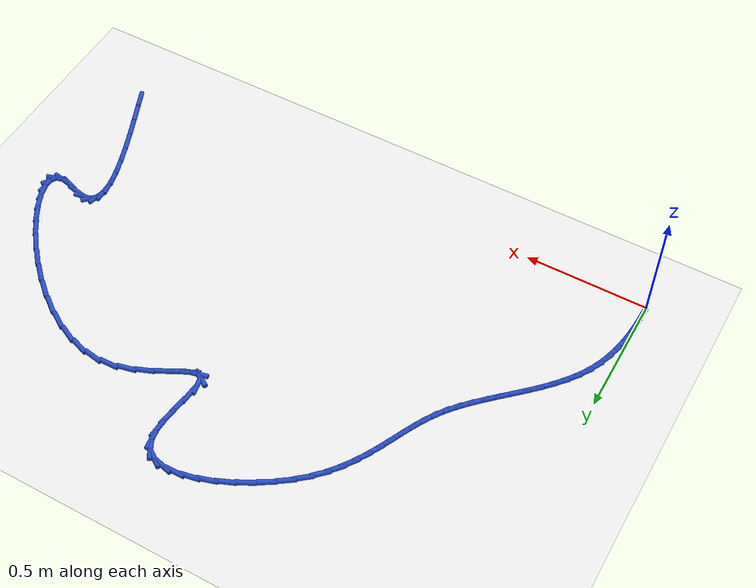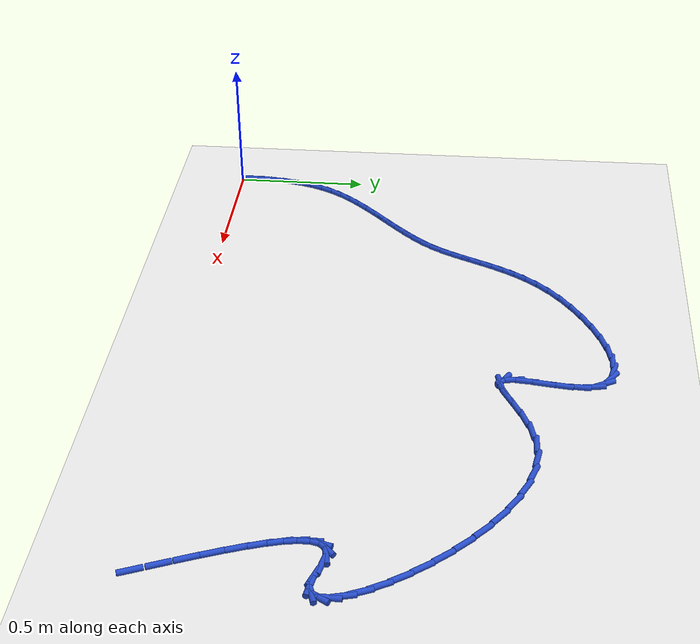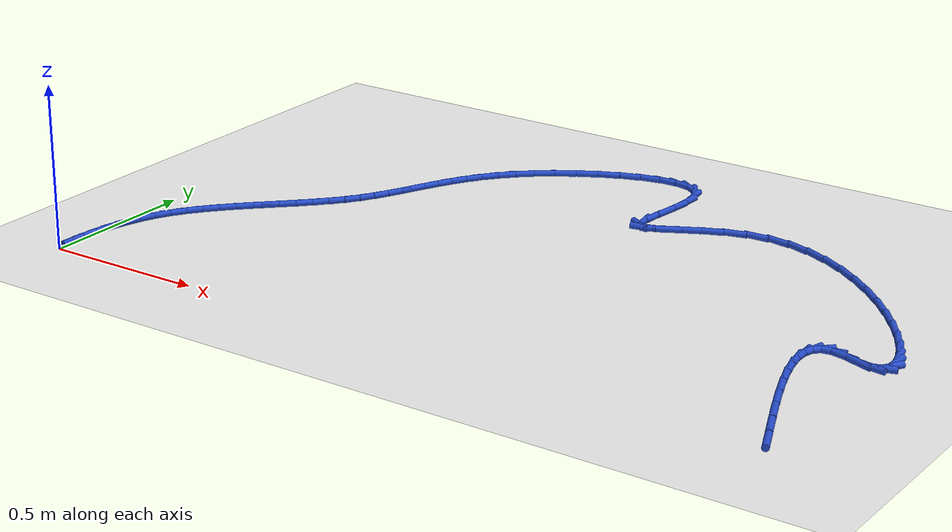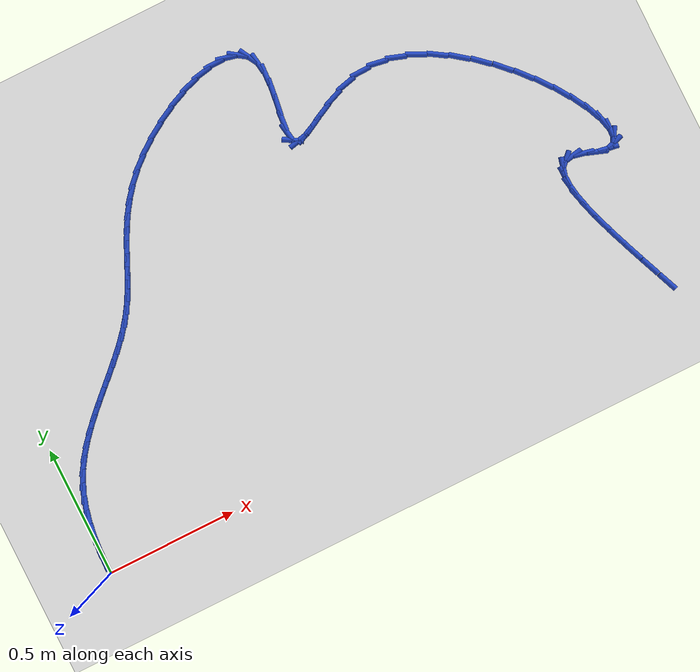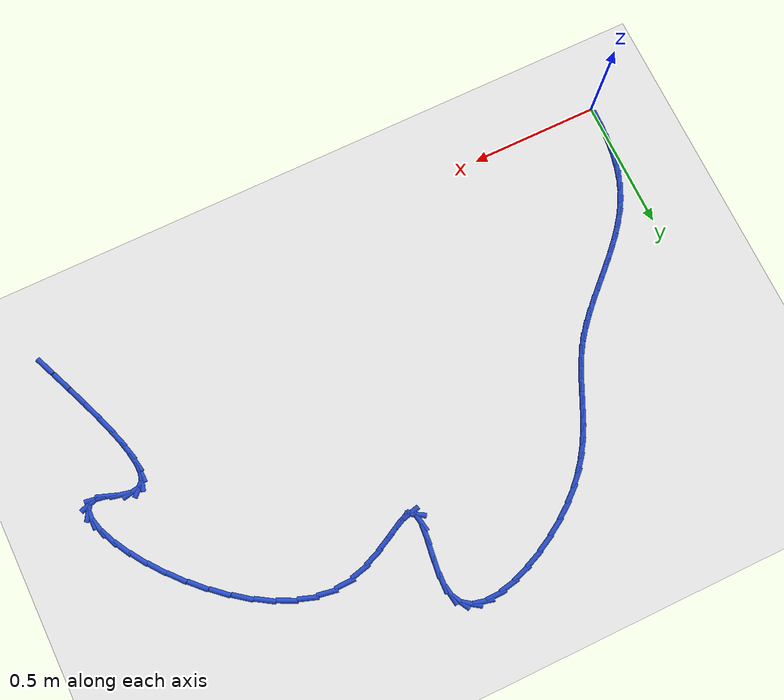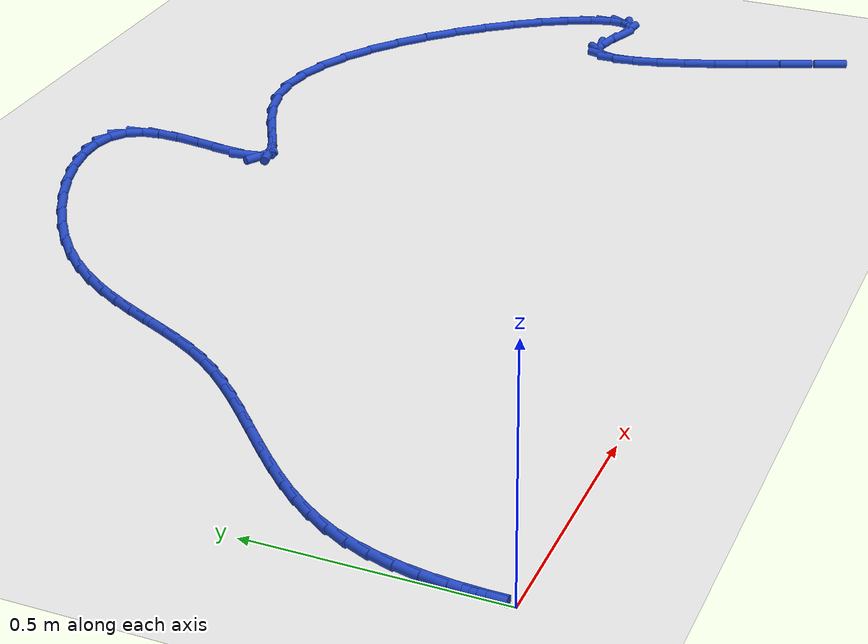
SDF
<sdf version="1.6">
 <world name="default">
  <model name="ground_plane">
   <static>1</static>
   <link name="link">
    <collision name="collision">
     <geometry><plane><normal>0 0 1</normal><size>100 100</size></plane></geometry>
     <surface><friction><ode><mu>100</mu><mu2>50</mu2></ode></friction></surface>
    </collision>
    <visual name="visual">
     <cast_shadows>0</cast_shadows>
     <geometry><plane><normal>0 0 1</normal><size>100 100</size></plane></geometry>
     <material>
      <script><uri>file://media/materials/scripts/gazebo.material</uri><name>Gazebo/WhiteGlow</name></script>
     </material>
    </visual>
   </link>
  </model>
  <model name="line">
   <link name="link_1">
    <pose>0.00043500452021122795 0.052981584294443676 0.01 0 1.57 1.5208898642054383</pose>
    <collision name="collision">
     <geometry><cylinder><radius>0.01</radius><length>0.08</length></cylinder></geometry>
    </collision>
    <visual name="visual">
     <material>
      <script><name>Gazebo/Blue</name><uri>file://media/materials/scripts/gazebo.material</uri></script>
     </material>
     <geometry><cylinder><radius>0.01</radius><length>0.08</length></cylinder></geometry>
    </visual>
   </link>
   <link name="link_2">
    <pose>0.0030667140822659717 0.10567063836101559 0.01 0 1.57 1.470550214013936</pose>
    <collision name="collision">
     <geometry><cylinder><radius>0.01</radius><length>0.08</length></cylinder></geometry>
    </collision>
    <visual name="visual">
     <material>
      <script><name>Gazebo/Blue</name><uri>file://media/materials/scripts/gazebo.material</uri></script>
     </material>
     <geometry><cylinder><radius>0.01</radius><length>0.08</length></cylinder></geometry>
    </visual>
   </link>
   <link name="link_3">
    <pose>0.008303527528725279 0.15773509716535003 0.01 0 1.57 1.410747370872445</pose>
    <collision name="collision">
     <geometry><cylinder><radius>0.01</radius><length>0.08</length></cylinder></geometry>
    </collision>
    <visual name="visual">
     <material>
      <script><name>Gazebo/Blue</name><uri>file://media/materials/scripts/gazebo.material</uri></script>
     </material>
     <geometry><cylinder><radius>0.01</radius><length>0.08</length></cylinder></geometry>
    </visual>
   </link>
   <link name="link_4">
    <pose>0.016553843702150194 0.2088428956730814 0.01 0 1.57 1.3406552772887717</pose>
    <collision name="collision">
     <geometry><cylinder><radius>0.01</radius><length>0.08</length></cylinder></geometry>
    </collision>
    <visual name="visual">
     <material>
      <script><name>Gazebo/Blue</name><uri>file://media/materials/scripts/gazebo.material</uri></script>
     </material>
     <geometry><cylinder><radius>0.01</radius><length>0.08</length></cylinder></geometry>
    </visual>
   </link>
   <link name="link_5">
    <pose>0.02822606144510177 0.25866196884984394 0.01 0 1.57 1.2596060054157323</pose>
    <collision name="collision">
     <geometry><cylinder><radius>0.01</radius><length>0.08</length></cylinder></geometry>
    </collision>
    <visual name="visual">
     <material>
      <script><name>Gazebo/Blue</name><uri>file://media/materials/scripts/gazebo.material</uri></script>
     </material>
     <geometry><cylinder><radius>0.01</radius><length>0.08</length></cylinder></geometry>
    </visual>
   </link>
   <link name="link_6">
    <pose>0.04372857960014104 0.3068602516612719 0.01 0 1.57 1.1673349412045655</pose>
    <collision name="collision">
     <geometry><cylinder><radius>0.01</radius><length>0.08</length></cylinder></geometry>
    </collision>
    <visual name="visual">
     <material>
      <script><name>Gazebo/Blue</name><uri>file://media/materials/scripts/gazebo.material</uri></script>
     </material>
     <geometry><cylinder><radius>0.01</radius><length>0.08</length></cylinder></geometry>
    </visual>
   </link>
   <link name="link_7">
    <pose>0.06346979700982908 0.3531056790729997 0.01 0 1.57 1.066675365331074</pose>
    <collision name="collision">
     <geometry><cylinder><radius>0.01</radius><length>0.08</length></cylinder></geometry>
    </collision>
    <visual name="visual">
     <material>
      <script><name>Gazebo/Blue</name><uri>file://media/materials/scripts/gazebo.material</uri></script>
     </material>
     <geometry><cylinder><radius>0.01</radius><length>0.08</length></cylinder></geometry>
    </visual>
   </link>
   <link name="link_8">
    <pose>0.08775436303835932 0.3971261382254803 0.01 0 1.57 0.9753920985315021</pose>
    <collision name="collision">
     <geometry><cylinder><radius>0.01</radius><length>0.08</length></cylinder></geometry>
    </collision>
    <visual name="visual">
     <material>
      <script><name>Gazebo/Blue</name><uri>file://media/materials/scripts/gazebo.material</uri></script>
     </material>
     <geometry><cylinder><radius>0.01</radius><length>0.08</length></cylinder></geometry>
    </visual>
   </link>
   <link name="link_9">
    <pose>0.11616525586093962 0.43906653770317067 0.01 0 1.57 0.9011191690737261</pose>
    <collision name="collision">
     <geometry><cylinder><radius>0.01</radius><length>0.08</length></cylinder></geometry>
    </collision>
    <visual name="visual">
     <material>
      <script><name>Gazebo/Blue</name><uri>file://media/materials/scripts/gazebo.material</uri></script>
     </material>
     <geometry><cylinder><radius>0.01</radius><length>0.08</length></cylinder></geometry>
    </visual>
   </link>
   <link name="link_10">
    <pose>0.14797884102928566 0.479248963787172 0.01 0 1.57 0.8434396431426506</pose>
    <collision name="collision">
     <geometry><cylinder><radius>0.01</radius><length>0.08</length></cylinder></geometry>
    </collision>
    <visual name="visual">
     <material>
      <script><name>Gazebo/Blue</name><uri>file://media/materials/scripts/gazebo.material</uri></script>
     </material>
     <geometry><cylinder><radius>0.01</radius><length>0.08</length></cylinder></geometry>
    </visual>
   </link>
   <link name="link_11">
    <pose>0.18247036417398113 0.5179961499108268 0.01 0 1.57 0.8014602633661414</pose>
    <collision name="collision">
     <geometry><cylinder><radius>0.01</radius><length>0.08</length></cylinder></geometry>
    </collision>
    <visual name="visual">
     <material>
      <script><name>Gazebo/Blue</name><uri>file://media/materials/scripts/gazebo.material</uri></script>
     </material>
     <geometry><cylinder><radius>0.01</radius><length>0.08</length></cylinder></geometry>
    </visual>
   </link>
   <link name="link_12">
    <pose>0.21891507092560988 0.5556308295074779 0.01 0 1.57 0.7742841384340893</pose>
    <collision name="collision">
     <geometry><cylinder><radius>0.01</radius><length>0.08</length></cylinder></geometry>
    </collision>
    <visual name="visual">
     <material>
      <script><name>Gazebo/Blue</name><uri>file://media/materials/scripts/gazebo.material</uri></script>
     </material>
     <geometry><cylinder><radius>0.01</radius><length>0.08</length></cylinder></geometry>
    </visual>
   </link>
   <link name="link_13">
    <pose>0.2565882069147555 0.5924757360104675 0.01 0 1.57 0.7612736541619016</pose>
    <collision name="collision">
     <geometry><cylinder><radius>0.01</radius><length>0.08</length></cylinder></geometry>
    </collision>
    <visual name="visual">
     <material>
      <script><name>Gazebo/Blue</name><uri>file://media/materials/scripts/gazebo.material</uri></script>
     </material>
     <geometry><cylinder><radius>0.01</radius><length>0.08</length></cylinder></geometry>
    </visual>
   </link>
   <link name="link_14">
    <pose>0.29476501777200187 0.6288536028531385 0.01 0 1.57 0.7621891333284874</pose>
    <collision name="collision">
     <geometry><cylinder><radius>0.01</radius><length>0.08</length></cylinder></geometry>
    </collision>
    <visual name="visual">
     <material>
      <script><name>Gazebo/Blue</name><uri>file://media/materials/scripts/gazebo.material</uri></script>
     </material>
     <geometry><cylinder><radius>0.01</radius><length>0.08</length></cylinder></geometry>
    </visual>
   </link>
   <link name="link_15">
    <pose>0.3327207491279326 0.665087163468833 0.01 0 1.57 0.7772548632885544</pose>
    <collision name="collision">
     <geometry><cylinder><radius>0.01</radius><length>0.08</length></cylinder></geometry>
    </collision>
    <visual name="visual">
     <material>
      <script><name>Gazebo/Blue</name><uri>file://media/materials/scripts/gazebo.material</uri></script>
     </material>
     <geometry><cylinder><radius>0.01</radius><length>0.08</length></cylinder></geometry>
    </visual>
   </link>
   <link name="link_16">
    <pose>0.36973064661313176 0.7014991512908944 0.01 0 1.57 0.8071772200619033</pose>
    <collision name="collision">
     <geometry><cylinder><radius>0.01</radius><length>0.08</length></cylinder></geometry>
    </collision>
    <visual name="visual">
     <material>
      <script><name>Gazebo/Blue</name><uri>file://media/materials/scripts/gazebo.material</uri></script>
     </material>
     <geometry><cylinder><radius>0.01</radius><length>0.08</length></cylinder></geometry>
    </visual>
   </link>
   <link name="link_17">
    <pose>0.40506995585818284 0.7384122997526644 0.01 0 1.57 0.8531072843763111</pose>
    <collision name="collision">
     <geometry><cylinder><radius>0.01</radius><length>0.08</length></cylinder></geometry>
    </collision>
    <visual name="visual">
     <material>
      <script><name>Gazebo/Blue</name><uri>file://media/materials/scripts/gazebo.material</uri></script>
     </material>
     <geometry><cylinder><radius>0.01</radius><length>0.08</length></cylinder></geometry>
    </visual>
   </link>
   <link name="link_18">
    <pose>0.43801392249366966 0.7761493422874861 0.01 0 1.57 0.9165021651937806</pose>
    <collision name="collision">
     <geometry><cylinder><radius>0.01</radius><length>0.08</length></cylinder></geometry>
    </collision>
    <visual name="visual">
     <material>
      <script><name>Gazebo/Blue</name><uri>file://media/materials/scripts/gazebo.material</uri></script>
     </material>
     <geometry><cylinder><radius>0.01</radius><length>0.08</length></cylinder></geometry>
    </visual>
   </link>
   <link name="link_19">
    <pose>0.4678377921501757 0.8150330123287015 0.01 0 1.57 0.9941278987002673</pose>
    <collision name="collision">
     <geometry><cylinder><radius>0.01</radius><length>0.08</length></cylinder></geometry>
    </collision>
    <visual name="visual">
     <material>
      <script><name>Gazebo/Blue</name><uri>file://media/materials/scripts/gazebo.material</uri></script>
     </material>
     <geometry><cylinder><radius>0.01</radius><length>0.08</length></cylinder></geometry>
    </visual>
   </link>
   <link name="link_20">
    <pose>0.4940388525267223 0.8553164822280097 0.01 0 1.57 1.0611538157828693</pose>
    <collision name="collision">
     <geometry><cylinder><radius>0.01</radius><length>0.08</length></cylinder></geometry>
    </collision>
    <visual name="visual">
     <material>
      <script><name>Gazebo/Blue</name><uri>file://media/materials/scripts/gazebo.material</uri></script>
     </material>
     <geometry><cylinder><radius>0.01</radius><length>0.08</length></cylinder></geometry>
    </visual>
   </link>
   <link name="link_21">
    <pose>0.5172737059981456 0.8968897355802032 0.01 0 1.57 1.107431508202331</pose>
    <collision name="collision">
     <geometry><cylinder><radius>0.01</radius><length>0.08</length></cylinder></geometry>
    </collision>
    <visual name="visual">
     <material>
      <script><name>Gazebo/Blue</name><uri>file://media/materials/scripts/gazebo.material</uri></script>
     </material>
     <geometry><cylinder><radius>0.01</radius><length>0.08</length></cylinder></geometry>
    </visual>
   </link>
   <link name="link_22">
    <pose>0.538576075469526 0.9395246120977981 0.01 0 1.57 1.1319307226415518</pose>
    <collision name="collision">
     <geometry><cylinder><radius>0.01</radius><length>0.08</length></cylinder></geometry>
    </collision>
    <visual name="visual">
     <material>
      <script><name>Gazebo/Blue</name><uri>file://media/materials/scripts/gazebo.material</uri></script>
     </material>
     <geometry><cylinder><radius>0.01</radius><length>0.08</length></cylinder></geometry>
    </visual>
   </link>
   <link name="link_23">
    <pose>0.5589798863942435 0.9829928880392141 0.01 0 1.57 1.134699054621189</pose>
    <collision name="collision">
     <geometry><cylinder><radius>0.01</radius><length>0.08</length></cylinder></geometry>
    </collision>
    <visual name="visual">
     <material>
      <script><name>Gazebo/Blue</name><uri>file://media/materials/scripts/gazebo.material</uri></script>
     </material>
     <geometry><cylinder><radius>0.01</radius><length>0.08</length></cylinder></geometry>
    </visual>
   </link>
   <link name="link_24">
    <pose>0.579519064225678 1.0270663396628705 0.01 0 1.57 1.116491813912213</pose>
    <collision name="collision">
     <geometry><cylinder><radius>0.01</radius><length>0.08</length></cylinder></geometry>
    </collision>
    <visual name="visual">
     <material>
      <script><name>Gazebo/Blue</name><uri>file://media/materials/scripts/gazebo.material</uri></script>
     </material>
     <geometry><cylinder><radius>0.01</radius><length>0.08</length></cylinder></geometry>
    </visual>
   </link>
   <link name="link_25">
    <pose>0.6012275344172092 1.0715167432271868 0.01 0 1.57 1.0786510362585258</pose>
    <collision name="collision">
     <geometry><cylinder><radius>0.01</radius><length>0.08</length></cylinder></geometry>
    </collision>
    <visual name="visual">
     <material>
      <script><name>Gazebo/Blue</name><uri>file://media/materials/scripts/gazebo.material</uri></script>
     </material>
     <geometry><cylinder><radius>0.01</radius><length>0.08</length></cylinder></geometry>
    </visual>
   </link>
   <link name="link_26">
    <pose>0.6251392224222173 1.1161158749905824 0.01 0 1.57 1.0231896917033152</pose>
    <collision name="collision">
     <geometry><cylinder><radius>0.01</radius><length>0.08</length></cylinder></geometry>
    </collision>
    <visual name="visual">
     <material>
      <script><name>Gazebo/Blue</name><uri>file://media/materials/scripts/gazebo.material</uri></script>
     </material>
     <geometry><cylinder><radius>0.01</radius><length>0.08</length></cylinder></geometry>
    </visual>
   </link>
   <link name="link_27">
    <pose>0.652288053694082 1.1606355112114763 0.01 0 1.57 0.952947877245439</pose>
    <collision name="collision">
     <geometry><cylinder><radius>0.01</radius><length>0.08</length></cylinder></geometry>
    </collision>
    <visual name="visual">
     <material>
      <script><name>Gazebo/Blue</name><uri>file://media/materials/scripts/gazebo.material</uri></script>
     </material>
     <geometry><cylinder><radius>0.01</radius><length>0.08</length></cylinder></geometry>
    </visual>
   </link>
   <link name="link_28">
    <pose>0.6837079536861835 1.204847428148289 0.01 0 1.57 0.8716390027845998</pose>
    <collision name="collision">
     <geometry><cylinder><radius>0.01</radius><length>0.08</length></cylinder></geometry>
    </collision>
    <visual name="visual">
     <material>
      <script><name>Gazebo/Blue</name><uri>file://media/materials/scripts/gazebo.material</uri></script>
     </material>
     <geometry><cylinder><radius>0.01</radius><length>0.08</length></cylinder></geometry>
    </visual>
   </link>
   <link name="link_29">
    <pose>0.7204328478519013 1.248523402059439 0.01 0 1.57 0.7836301448735291</pose>
    <collision name="collision">
     <geometry><cylinder><radius>0.01</radius><length>0.08</length></cylinder></geometry>
    </collision>
    <visual name="visual">
     <material>
      <script><name>Gazebo/Blue</name><uri>file://media/materials/scripts/gazebo.material</uri></script>
     </material>
     <geometry><cylinder><radius>0.01</radius><length>0.08</length></cylinder></geometry>
    </visual>
   </link>
   <link name="link_30">
    <pose>0.7634966616446157 1.2914352092033465 0.01 0 1.57 0.6948969449313782</pose>
    <collision name="collision">
     <geometry><cylinder><radius>0.01</radius><length>0.08</length></cylinder></geometry>
    </collision>
    <visual name="visual">
     <material>
      <script><name>Gazebo/Blue</name><uri>file://media/materials/scripts/gazebo.material</uri></script>
     </material>
     <geometry><cylinder><radius>0.01</radius><length>0.08</length></cylinder></geometry>
    </visual>
   </link>
   <link name="link_31">
    <pose>0.8136782272785172 1.3332666739318826 0.01 0 1.57 0.6161848446954908</pose>
    <collision name="collision">
     <geometry><cylinder><radius>0.01</radius><length>0.08</length></cylinder></geometry>
    </collision>
    <visual name="visual">
     <material>
      <script><name>Gazebo/Blue</name><uri>file://media/materials/scripts/gazebo.material</uri></script>
     </material>
     <geometry><cylinder><radius>0.01</radius><length>0.08</length></cylinder></geometry>
    </visual>
   </link>
   <link name="link_32">
    <pose>0.8698466300683007 1.3730431716259925 0.01 0 1.57 0.5447257016983517</pose>
    <collision name="collision">
     <geometry><cylinder><radius>0.01</radius><length>0.08</length></cylinder></geometry>
    </collision>
    <visual name="visual">
     <material>
      <script><name>Gazebo/Blue</name><uri>file://media/materials/scripts/gazebo.material</uri></script>
     </material>
     <geometry><cylinder><radius>0.01</radius><length>0.08</length></cylinder></geometry>
    </visual>
   </link>
   <link name="link_33">
    <pose>0.9300053398819851 1.4094916278562137 0.01 0 1.57 0.4735326778670908</pose>
    <collision name="collision">
     <geometry><cylinder><radius>0.01</radius><length>0.08</length></cylinder></geometry>
    </collision>
    <visual name="visual">
     <material>
      <script><name>Gazebo/Blue</name><uri>file://media/materials/scripts/gazebo.material</uri></script>
     </material>
     <geometry><cylinder><radius>0.01</radius><length>0.08</length></cylinder></geometry>
    </visual>
   </link>
   <link name="link_34">
    <pose>0.9921535321259036 1.441337487534113 0.01 0 1.57 0.39586508999717585</pose>
    <collision name="collision">
     <geometry><cylinder><radius>0.01</radius><length>0.08</length></cylinder></geometry>
    </collision>
    <visual name="visual">
     <material>
      <script><name>Gazebo/Blue</name><uri>file://media/materials/scripts/gazebo.material</uri></script>
     </material>
     <geometry><cylinder><radius>0.01</radius><length>0.08</length></cylinder></geometry>
    </visual>
   </link>
   <link name="link_35">
    <pose>1.0542903822063896 1.4673061955712574 0.01 0 1.57 0.30330965088102346</pose>
    <collision name="collision">
     <geometry><cylinder><radius>0.01</radius><length>0.08</length></cylinder></geometry>
    </collision>
    <visual name="visual">
     <material>
      <script><name>Gazebo/Blue</name><uri>file://media/materials/scripts/gazebo.material</uri></script>
     </material>
     <geometry><cylinder><radius>0.01</radius><length>0.08</length></cylinder></geometry>
    </visual>
   </link>
   <link name="link_36">
    <pose>1.1144150655297766 1.4861231968792137 0.01 0 1.57 0.18310539684767244</pose>
    <collision name="collision">
     <geometry><cylinder><radius>0.01</radius><length>0.08</length></cylinder></geometry>
    </collision>
    <visual name="visual">
     <material>
      <script><name>Gazebo/Blue</name><uri>file://media/materials/scripts/gazebo.material</uri></script>
     </material>
     <geometry><cylinder><radius>0.01</radius><length>0.08</length></cylinder></geometry>
    </visual>
   </link>
   <link name="link_37">
    <pose>1.1705267575023979 1.4965139363695494 0.01 0 1.57 0.013770623196092291</pose>
    <collision name="collision">
     <geometry><cylinder><radius>0.01</radius><length>0.08</length></cylinder></geometry>
    </collision>
    <visual name="visual">
     <material>
      <script><name>Gazebo/Blue</name><uri>file://media/materials/scripts/gazebo.material</uri></script>
     </material>
     <geometry><cylinder><radius>0.01</radius><length>0.08</length></cylinder></geometry>
    </visual>
   </link>
   <link name="link_38">
    <pose>1.2206246335305855 1.4972038589538306 0.01 0 1.57 -0.23970804611762409</pose>
    <collision name="collision">
     <geometry><cylinder><radius>0.01</radius><length>0.08</length></cylinder></geometry>
    </collision>
    <visual name="visual">
     <material>
      <script><name>Gazebo/Blue</name><uri>file://media/materials/scripts/gazebo.material</uri></script>
     </material>
     <geometry><cylinder><radius>0.01</radius><length>0.08</length></cylinder></geometry>
    </visual>
   </link>
   <link name="link_39">
    <pose>1.262707869020674 1.4869184095436245 0.01 0 1.57 -0.612564018022563</pose>
    <collision name="collision">
     <geometry><cylinder><radius>0.01</radius><length>0.08</length></cylinder></geometry>
    </collision>
    <visual name="visual">
     <material>
      <script><name>Gazebo/Blue</name><uri>file://media/materials/scripts/gazebo.material</uri></script>
     </material>
     <geometry><cylinder><radius>0.01</radius><length>0.08</length></cylinder></geometry>
    </visual>
   </link>
   <link name="link_40">
    <pose>1.294775639378996 1.4643830330504986 0.01 0 1.57 -1.063311678665787</pose>
    <collision name="collision">
     <geometry><cylinder><radius>0.01</radius><length>0.08</length></cylinder></geometry>
    </collision>
    <visual name="visual">
     <material>
      <script><name>Gazebo/Blue</name><uri>file://media/materials/scripts/gazebo.material</uri></script>
     </material>
     <geometry><cylinder><radius>0.01</radius><length>0.08</length></cylinder></geometry>
    </visual>
   </link>
   <link name="link_41">
    <pose>1.3148271200118848 1.4283231743860185 0.01 0 1.57 -1.4334432177207181</pose>
    <collision name="collision">
     <geometry><cylinder><radius>0.01</radius><length>0.08</length></cylinder></geometry>
    </collision>
    <visual name="visual">
     <material>
      <script><name>Gazebo/Blue</name><uri>file://media/materials/scripts/gazebo.material</uri></script>
     </material>
     <geometry><cylinder><radius>0.01</radius><length>0.08</length></cylinder></geometry>
    </visual>
   </link>
   <link name="link_42">
    <pose>1.3217228671589292 1.378434767908933 0.01 0 1.57 1.5209047134766496</pose>
    <collision name="collision">
     <geometry><cylinder><radius>0.01</radius><length>0.08</length></cylinder></geometry>
    </collision>
    <visual name="visual">
     <material>
      <script><name>Gazebo/Blue</name><uri>file://media/materials/scripts/gazebo.material</uri></script>
     </material>
     <geometry><cylinder><radius>0.01</radius><length>0.08</length></cylinder></geometry>
    </visual>
   </link>
   <link name="link_43">
    <pose>1.3187766296948247 1.3194310136191352 0.01 0 1.57 1.4414093233951701</pose>
    <collision name="collision">
     <geometry><cylinder><radius>0.01</radius><length>0.08</length></cylinder></geometry>
    </collision>
    <visual name="visual">
     <material>
      <script><name>Gazebo/Blue</name><uri>file://media/materials/scripts/gazebo.material</uri></script>
     </material>
     <geometry><cylinder><radius>0.01</radius><length>0.08</length></cylinder></geometry>
    </visual>
   </link>
   <link name="link_44">
    <pose>1.3107369787073733 1.2576416785013402 0.01 0 1.57 1.4278364744829437</pose>
    <collision name="collision">
     <geometry><cylinder><radius>0.01</radius><length>0.08</length></cylinder></geometry>
    </collision>
    <visual name="visual">
     <material>
      <script><name>Gazebo/Blue</name><uri>file://media/materials/scripts/gazebo.material</uri></script>
     </material>
     <geometry><cylinder><radius>0.01</radius><length>0.08</length></cylinder></geometry>
    </visual>
   </link>
   <link name="link_45">
    <pose>1.302353180068665 1.1993973123308643 0.01 0 1.57 1.4887240151860532</pose>
    <collision name="collision">
     <geometry><cylinder><radius>0.01</radius><length>0.08</length></cylinder></geometry>
    </collision>
    <visual name="visual">
     <material>
      <script><name>Gazebo/Blue</name><uri>file://media/materials/scripts/gazebo.material</uri></script>
     </material>
     <geometry><cylinder><radius>0.01</radius><length>0.08</length></cylinder></geometry>
    </visual>
   </link>
   <link name="link_46">
    <pose>1.2983744996507915 1.1510284648830267 0.01 0 1.57 -1.41124205783127</pose>
    <collision name="collision">
     <geometry><cylinder><radius>0.01</radius><length>0.08</length></cylinder></geometry>
    </collision>
    <visual name="visual">
     <material>
      <script><name>Gazebo/Blue</name><uri>file://media/materials/scripts/gazebo.material</uri></script>
     </material>
     <geometry><cylinder><radius>0.01</radius><length>0.08</length></cylinder></geometry>
    </visual>
   </link>
   <link name="link_47">
    <pose>1.3035502033258426 1.1188656859331423 0.01 0 1.57 -0.5428448192312582</pose>
    <collision name="collision">
     <geometry><cylinder><radius>0.01</radius><length>0.08</length></cylinder></geometry>
    </collision>
    <visual name="visual">
     <material>
      <script><name>Gazebo/Blue</name><uri>file://media/materials/scripts/gazebo.material</uri></script>
     </material>
     <geometry><cylinder><radius>0.01</radius><length>0.08</length></cylinder></geometry>
    </visual>
   </link>
   <link name="link_48">
    <pose>1.3218466099721702 1.107827404392785 0.01 0 1.57 0.22862839273643384</pose>
    <collision name="collision">
     <geometry><cylinder><radius>0.01</radius><length>0.08</length></cylinder></geometry>
    </collision>
    <visual name="visual">
     <material>
      <script><name>Gazebo/Blue</name><uri>file://media/materials/scripts/gazebo.material</uri></script>
     </material>
     <geometry><cylinder><radius>0.01</radius><length>0.08</length></cylinder></geometry>
    </visual>
   </link>
   <link name="link_49">
    <pose>1.352919753709203 1.1150580324323875 0.01 0 1.57 0.4438074241718497</pose>
    <collision name="collision">
     <geometry><cylinder><radius>0.01</radius><length>0.08</length></cylinder></geometry>
    </collision>
    <visual name="visual">
     <material>
      <script><name>Gazebo/Blue</name><uri>file://media/materials/scripts/gazebo.material</uri></script>
     </material>
     <geometry><cylinder><radius>0.01</radius><length>0.08</length></cylinder></geometry>
    </visual>
   </link>
   <link name="link_50">
    <pose>1.394950323565977 1.1350410542157272 0.01 0 1.57 0.4888503084165558</pose>
    <collision name="collision">
     <geometry><cylinder><radius>0.01</radius><length>0.08</length></cylinder></geometry>
    </collision>
    <visual name="visual">
     <material>
      <script><name>Gazebo/Blue</name><uri>file://media/materials/scripts/gazebo.material</uri></script>
     </material>
     <geometry><cylinder><radius>0.01</radius><length>0.08</length></cylinder></geometry>
    </visual>
   </link>
   <link name="link_51">
    <pose>1.446117712373408 1.1622576160875184 0.01 0 1.57 0.45939053684366965</pose>
    <collision name="collision">
     <geometry><cylinder><radius>0.01</radius><length>0.08</length></cylinder></geometry>
    </collision>
    <visual name="visual">
     <material>
      <script><name>Gazebo/Blue</name><uri>file://media/materials/scripts/gazebo.material</uri></script>
     </material>
     <geometry><cylinder><radius>0.01</radius><length>0.08</length></cylinder></geometry>
    </visual>
   </link>
   <link name="link_52">
    <pose>1.5046013129624147 1.1911888643924782 0.01 0 1.57 0.37423061509577554</pose>
    <collision name="collision">
     <geometry><cylinder><radius>0.01</radius><length>0.08</length></cylinder></geometry>
    </collision>
    <visual name="visual">
     <material>
      <script><name>Gazebo/Blue</name><uri>file://media/materials/scripts/gazebo.material</uri></script>
     </material>
     <geometry><cylinder><radius>0.01</radius><length>0.08</length></cylinder></geometry>
    </visual>
   </link>
   <link name="link_53">
    <pose>1.5685805181639132 1.2163159454753214 0.01 0 1.57 0.22948535530560002</pose>
    <collision name="collision">
     <geometry><cylinder><radius>0.01</radius><length>0.08</length></cylinder></geometry>
    </collision>
    <visual name="visual">
     <material>
      <script><name>Gazebo/Blue</name><uri>file://media/materials/scripts/gazebo.material</uri></script>
     </material>
     <geometry><cylinder><radius>0.01</radius><length>0.08</length></cylinder></geometry>
    </visual>
   </link>
   <link name="link_54">
    <pose>1.6362347208088217 1.2321200056807644 0.01 0 1.57 0.02602913116310797</pose>
    <collision name="collision">
     <geometry><cylinder><radius>0.01</radius><length>0.08</length></cylinder></geometry>
    </collision>
    <visual name="visual">
     <material>
      <script><name>Gazebo/Blue</name><uri>file://media/materials/scripts/gazebo.material</uri></script>
     </material>
     <geometry><cylinder><radius>0.01</radius><length>0.08</length></cylinder></geometry>
    </visual>
   </link>
   <link name="link_55">
    <pose>1.7058501896405012 1.2339324451871763 0.01 0 1.57 -0.16971665434272856</pose>
    <collision name="collision">
     <geometry><cylinder><radius>0.01</radius><length>0.08</length></cylinder></geometry>
    </collision>
    <visual name="visual">
     <material>
      <script><name>Gazebo/Blue</name><uri>file://media/materials/scripts/gazebo.material</uri></script>
     </material>
     <geometry><cylinder><radius>0.01</radius><length>0.08</length></cylinder></geometry>
    </visual>
   </link>
   <link name="link_56">
    <pose>1.776313139789273 1.2218575517566421 0.01 0 1.57 -0.33099004219598527</pose>
    <collision name="collision">
     <geometry><cylinder><radius>0.01</radius><length>0.08</length></cylinder></geometry>
    </collision>
    <visual name="visual">
     <material>
      <script><name>Gazebo/Blue</name><uri>file://media/materials/scripts/gazebo.material</uri></script>
     </material>
     <geometry><cylinder><radius>0.01</radius><length>0.08</length></cylinder></geometry>
    </visual>
   </link>
   <link name="link_57">
    <pose>1.8467189840494924 1.1976638900848264 0.01 0 1.57 -0.4615714933665127</pose>
    <collision name="collision">
     <geometry><cylinder><radius>0.01</radius><length>0.08</length></cylinder></geometry>
    </collision>
    <visual name="visual">
     <material>
      <script><name>Gazebo/Blue</name><uri>file://media/materials/scripts/gazebo.material</uri></script>
     </material>
     <geometry><cylinder><radius>0.01</radius><length>0.08</length></cylinder></geometry>
    </visual>
   </link>
   <link name="link_58">
    <pose>1.9161633505988465 1.1631217383545416 0.01 0 1.57 -0.5679484792166528</pose>
    <collision name="collision">
     <geometry><cylinder><radius>0.01</radius><length>0.08</length></cylinder></geometry>
    </collision>
    <visual name="visual">
     <material>
      <script><name>Gazebo/Blue</name><uri>file://media/materials/scripts/gazebo.material</uri></script>
     </material>
     <geometry><cylinder><radius>0.01</radius><length>0.08</length></cylinder></geometry>
    </visual>
   </link>
   <link name="link_59">
    <pose>1.9837418676150191 1.1200013747486022 0.01 0 1.57 -0.6564296513133588</pose>
    <collision name="collision">
     <geometry><cylinder><radius>0.01</radius><length>0.08</length></cylinder></geometry>
    </collision>
    <visual name="visual">
     <material>
      <script><name>Gazebo/Blue</name><uri>file://media/materials/scripts/gazebo.material</uri></script>
     </material>
     <geometry><cylinder><radius>0.01</radius><length>0.08</length></cylinder></geometry>
    </visual>
   </link>
   <link name="link_60">
    <pose>2.048550163275696 1.0700730774498202 0.01 0 1.57 -0.7323234388851076</pose>
    <collision name="collision">
     <geometry><cylinder><radius>0.01</radius><length>0.08</length></cylinder></geometry>
    </collision>
    <visual name="visual">
     <material>
      <script><name>Gazebo/Blue</name><uri>file://media/materials/scripts/gazebo.material</uri></script>
     </material>
     <geometry><cylinder><radius>0.01</radius><length>0.08</length></cylinder></geometry>
    </visual>
   </link>
   <link name="link_61">
    <pose>2.1096838657585644 1.015107124641009 0.01 0 1.57 -0.8000205283445078</pose>
    <collision name="collision">
     <geometry><cylinder><radius>0.01</radius><length>0.08</length></cylinder></geometry>
    </collision>
    <visual name="visual">
     <material>
      <script><name>Gazebo/Blue</name><uri>file://media/materials/scripts/gazebo.material</uri></script>
     </material>
     <geometry><cylinder><radius>0.01</radius><length>0.08</length></cylinder></geometry>
    </visual>
   </link>
   <link name="link_62">
    <pose>2.1662386032413075 0.9568737945049828 0.01 0 1.57 -0.8633884399972575</pose>
    <collision name="collision">
     <geometry><cylinder><radius>0.01</radius><length>0.08</length></cylinder></geometry>
    </collision>
    <visual name="visual">
     <material>
      <script><name>Gazebo/Blue</name><uri>file://media/materials/scripts/gazebo.material</uri></script>
     </material>
     <geometry><cylinder><radius>0.01</radius><length>0.08</length></cylinder></geometry>
    </visual>
   </link>
   <link name="link_63">
    <pose>2.217310003901612 0.8971433652245531 0.01 0 1.57 -0.9263190505667785</pose>
    <collision name="collision">
     <geometry><cylinder><radius>0.01</radius><length>0.08</length></cylinder></geometry>
    </collision>
    <visual name="visual">
     <material>
      <script><name>Gazebo/Blue</name><uri>file://media/materials/scripts/gazebo.material</uri></script>
     </material>
     <geometry><cylinder><radius>0.01</radius><length>0.08</length></cylinder></geometry>
    </visual>
   </link>
   <link name="link_64">
    <pose>2.2619936959171634 0.837686114982535 0.01 0 1.57 -0.9935321250354436</pose>
    <collision name="collision">
     <geometry><cylinder><radius>0.01</radius><length>0.08</length></cylinder></geometry>
    </collision>
    <visual name="visual">
     <material>
      <script><name>Gazebo/Blue</name><uri>file://media/materials/scripts/gazebo.material</uri></script>
     </material>
     <geometry><cylinder><radius>0.01</radius><length>0.08</length></cylinder></geometry>
    </visual>
   </link>
   <link name="link_65">
    <pose>2.2993853074656476 0.7802723219617409 0.01 0 1.57 -1.0720427152715077</pose>
    <collision name="collision">
     <geometry><cylinder><radius>0.01</radius><length>0.08</length></cylinder></geometry>
    </collision>
    <visual name="visual">
     <material>
      <script><name>Gazebo/Blue</name><uri>file://media/materials/scripts/gazebo.material</uri></script>
     </material>
     <geometry><cylinder><radius>0.01</radius><length>0.08</length></cylinder></geometry>
    </visual>
   </link>
   <link name="link_66">
    <pose>2.3285804667247505 0.7266722643449836 0.01 0 1.57 -1.1744508160605993</pose>
    <collision name="collision">
     <geometry><cylinder><radius>0.01</radius><length>0.08</length></cylinder></geometry>
    </collision>
    <visual name="visual">
     <material>
      <script><name>Gazebo/Blue</name><uri>file://media/materials/scripts/gazebo.material</uri></script>
     </material>
     <geometry><cylinder><radius>0.01</radius><length>0.08</length></cylinder></geometry>
    </visual>
   </link>
   <link name="link_67">
    <pose>2.348674801872156 0.678656220315077 0.01 0 1.57 -1.327584491817045</pose>
    <collision name="collision">
     <geometry><cylinder><radius>0.01</radius><length>0.08</length></cylinder></geometry>
    </collision>
    <visual name="visual">
     <material>
      <script><name>Gazebo/Blue</name><uri>file://media/materials/scripts/gazebo.material</uri></script>
     </material>
     <geometry><cylinder><radius>0.01</radius><length>0.08</length></cylinder></geometry>
    </visual>
   </link>
   <link name="link_68">
    <pose>2.3587639410855514 0.6379944680548337 0.01 0 1.57 1.5447875498582477</pose>
    <collision name="collision">
     <geometry><cylinder><radius>0.01</radius><length>0.08</length></cylinder></geometry>
    </collision>
    <visual name="visual">
     <material>
      <script><name>Gazebo/Blue</name><uri>file://media/materials/scripts/gazebo.material</uri></script>
     </material>
     <geometry><cylinder><radius>0.01</radius><length>0.08</length></cylinder></geometry>
    </visual>
   </link>
   <link name="link_69">
    <pose>2.357943512542621 0.6064572857470674 0.01 0 1.57 1.0215555971413368</pose>
    <collision name="collision">
     <geometry><cylinder><radius>0.01</radius><length>0.08</length></cylinder></geometry>
    </collision>
    <visual name="visual">
     <material>
      <script><name>Gazebo/Blue</name><uri>file://media/materials/scripts/gazebo.material</uri></script>
     </material>
     <geometry><cylinder><radius>0.01</radius><length>0.08</length></cylinder></geometry>
    </visual>
   </link>
   <link name="link_70">
    <pose>2.3453091444210514 0.5858149515745914 0.01 0 1.57 0.304841928672054</pose>
    <collision name="collision">
     <geometry><cylinder><radius>0.01</radius><length>0.08</length></cylinder></geometry>
    </collision>
    <visual name="visual">
     <material>
      <script><name>Gazebo/Blue</name><uri>file://media/materials/scripts/gazebo.material</uri></script>
     </material>
     <geometry><cylinder><radius>0.01</radius><length>0.08</length></cylinder></geometry>
    </visual>
   </link>
   <link name="link_71">
    <pose>2.3199564648985276 0.5778377437202187 0.01 0 1.57 -0.16417871830335745</pose>
    <collision name="collision">
     <geometry><cylinder><radius>0.01</radius><length>0.08</length></cylinder></geometry>
    </collision>
    <visual name="visual">
     <material>
      <script><name>Gazebo/Blue</name><uri>file://media/materials/scripts/gazebo.material</uri></script>
     </material>
     <geometry><cylinder><radius>0.01</radius><length>0.08</length></cylinder></geometry>
    </visual>
   </link>
   <link name="link_72">
    <pose>2.2809822563960886 0.5842945979223737 0.01 0 1.57 -0.339017712695943</pose>
    <collision name="collision">
     <geometry><cylinder><radius>0.01</radius><length>0.08</length></cylinder></geometry>
    </collision>
    <visual name="visual">
     <material>
      <script><name>Gazebo/Blue</name><uri>file://media/materials/scripts/gazebo.material</uri></script>
     </material>
     <geometry><cylinder><radius>0.01</radius><length>0.08</length></cylinder></geometry>
    </visual>
   </link>
   <link name="link_73">
    <pose>2.2321653281250224 0.6015090119443703 0.01 0 1.57 -0.21023803896432322</pose>
    <collision name="collision">
     <geometry><cylinder><radius>0.01</radius><length>0.08</length></cylinder></geometry>
    </collision>
    <visual name="visual">
     <material>
      <script><name>Gazebo/Blue</name><uri>file://media/materials/scripts/gazebo.material</uri></script>
     </material>
     <geometry><cylinder><radius>0.01</radius><length>0.08</length></cylinder></geometry>
    </visual>
   </link>
   <link name="link_74">
    <pose>2.19046096827154 0.6104083599269372 0.01 0 1.57 0.17801262102497437</pose>
    <collision name="collision">
     <geometry><cylinder><radius>0.01</radius><length>0.08</length></cylinder></geometry>
    </collision>
    <visual name="visual">
     <material>
      <script><name>Gazebo/Blue</name><uri>file://media/materials/scripts/gazebo.material</uri></script>
     </material>
     <geometry><cylinder><radius>0.01</radius><length>0.08</length></cylinder></geometry>
    </visual>
   </link>
   <link name="link_75">
    <pose>2.1610547805544993 0.6051176844485274 0.01 0 1.57 0.786646414998817</pose>
    <collision name="collision">
     <geometry><cylinder><radius>0.01</radius><length>0.08</length></cylinder></geometry>
    </collision>
    <visual name="visual">
     <material>
      <script><name>Gazebo/Blue</name><uri>file://media/materials/scripts/gazebo.material</uri></script>
     </material>
     <geometry><cylinder><radius>0.01</radius><length>0.08</length></cylinder></geometry>
    </visual>
   </link>
   <link name="link_76">
    <pose>2.1428473582274634 0.586864750399621 0.01 0 1.57 1.3058316351920345</pose>
    <collision name="collision">
     <geometry><cylinder><radius>0.01</radius><length>0.08</length></cylinder></geometry>
    </collision>
    <visual name="visual">
     <material>
      <script><name>Gazebo/Blue</name><uri>file://media/materials/scripts/gazebo.material</uri></script>
     </material>
     <geometry><cylinder><radius>0.01</radius><length>0.08</length></cylinder></geometry>
    </visual>
   </link>
   <link name="link_77">
    <pose>2.134717204219437 0.5569022870589012 0.01 0 1.57 -1.5503728362421276</pose>
    <collision name="collision">
     <geometry><cylinder><radius>0.01</radius><length>0.08</length></cylinder></geometry>
    </collision>
    <visual name="visual">
     <material>
      <script><name>Gazebo/Blue</name><uri>file://media/materials/scripts/gazebo.material</uri></script>
     </material>
     <geometry><cylinder><radius>0.01</radius><length>0.08</length></cylinder></geometry>
    </visual>
   </link>
   <link name="link_78">
    <pose>2.135542821459423 0.5164830237050526 0.01 0 1.57 -1.398023726576133</pose>
    <collision name="collision">
     <geometry><cylinder><radius>0.01</radius><length>0.08</length></cylinder></geometry>
    </collision>
    <visual name="visual">
     <material>
      <script><name>Gazebo/Blue</name><uri>file://media/materials/scripts/gazebo.material</uri></script>
     </material>
     <geometry><cylinder><radius>0.01</radius><length>0.08</length></cylinder></geometry>
    </visual>
   </link>
   <link name="link_79">
    <pose>2.1442027128764263 0.4668596896167587 0.01 0 1.57 -1.3098790261121023</pose>
    <collision name="collision">
     <geometry><cylinder><radius>0.01</radius><length>0.08</length></cylinder></geometry>
    </collision>
    <visual name="visual">
     <material>
      <script><name>Gazebo/Blue</name><uri>file://media/materials/scripts/gazebo.material</uri></script>
     </material>
     <geometry><cylinder><radius>0.01</radius><length>0.08</length></cylinder></geometry>
    </visual>
   </link>
   <link name="link_80">
    <pose>2.1595753813994487 0.4092850140727042 0.01 0 1.57 -1.255507547069866</pose>
    <collision name="collision">
     <geometry><cylinder><radius>0.01</radius><length>0.08</length></cylinder></geometry>
    </collision>
    <visual name="visual">
     <material>
      <script><name>Gazebo/Blue</name><uri>file://media/materials/scripts/gazebo.material</uri></script>
     </material>
     <geometry><cylinder><radius>0.01</radius><length>0.08</length></cylinder></geometry>
    </visual>
   </link>
   <link name="link_81">
    <pose>2.1805393299574956 0.3450117263515726 0.01 0 1.57 -1.2209957160388847</pose>
    <collision name="collision">
     <geometry><cylinder><radius>0.01</radius><length>0.08</length></cylinder></geometry>
    </collision>
    <visual name="visual">
     <material>
      <script><name>Gazebo/Blue</name><uri>file://media/materials/scripts/gazebo.material</uri></script>
     </material>
     <geometry><cylinder><radius>0.01</radius><length>0.08</length></cylinder></geometry>
    </visual>
   </link>
   <link name="link_82">
    <pose>2.2059730614795705 0.2752925557320474 0.01 0 1.57 -1.1994545871882898</pose>
    <collision name="collision">
     <geometry><cylinder><radius>0.01</radius><length>0.08</length></cylinder></geometry>
    </collision>
    <visual name="visual">
     <material>
      <script><name>Gazebo/Blue</name><uri>file://media/materials/scripts/gazebo.material</uri></script>
     </material>
     <geometry><cylinder><radius>0.01</radius><length>0.08</length></cylinder></geometry>
    </visual>
   </link>
   <link name="link_83">
    <pose>2.2347550788946773 0.201380231492814 0.01 0 1.57 -1.1872906533970116</pose>
    <collision name="collision">
     <geometry><cylinder><radius>0.01</radius><length>0.08</length></cylinder></geometry>
    </collision>
    <visual name="visual">
     <material>
      <script><name>Gazebo/Blue</name><uri>file://media/materials/scripts/gazebo.material</uri></script>
     </material>
     <geometry><cylinder><radius>0.01</radius><length>0.08</length></cylinder></geometry>
    </visual>
   </link>
   <link name="link_84">
    <pose>2.26576388513182 0.124527482912555 0.01 0 1.57 -1.1826530432598252</pose>
    <collision name="collision">
     <geometry><cylinder><radius>0.01</radius><length>0.08</length></cylinder></geometry>
    </collision>
    <visual name="visual">
     <material>
      <script><name>Gazebo/Blue</name><uri>file://media/materials/scripts/gazebo.material</uri></script>
     </material>
     <geometry><cylinder><radius>0.01</radius><length>0.08</length></cylinder></geometry>
    </visual>
   </link>
   <link name="link_85">
    <pose>2.2978779831200025 0.045987039269955746 0.01 0 1.57 -1.1847600676417922</pose>
    <collision name="collision">
     <geometry><cylinder><radius>0.01</radius><length>0.08</length></cylinder></geometry>
    </collision>
    <visual name="visual">
     <material>
      <script><name>Gazebo/Blue</name><uri>file://media/materials/scripts/gazebo.material</uri></script>
     </material>
     <geometry><cylinder><radius>0.01</radius><length>0.08</length></cylinder></geometry>
    </visual>
   </link>
   <link name="link_171">
    <pose>0.00031931942516898095 0.05298708976659699 0.01 0 1.57 1.5647700369744875</pose>
    <collision name="collision">
     <geometry><cylinder><radius>0.01</radius><length>0.08</length></cylinder></geometry>
    </collision>
    <visual name="visual">
     <material>
      <script><name>Gazebo/Blue</name><uri>file://media/materials/scripts/gazebo.material</uri></script>
     </material>
     <geometry><cylinder><radius>0.01</radius><length>0.08</length></cylinder></geometry>
    </visual>
   </link>
  </model>
 </world>
</sdf>
